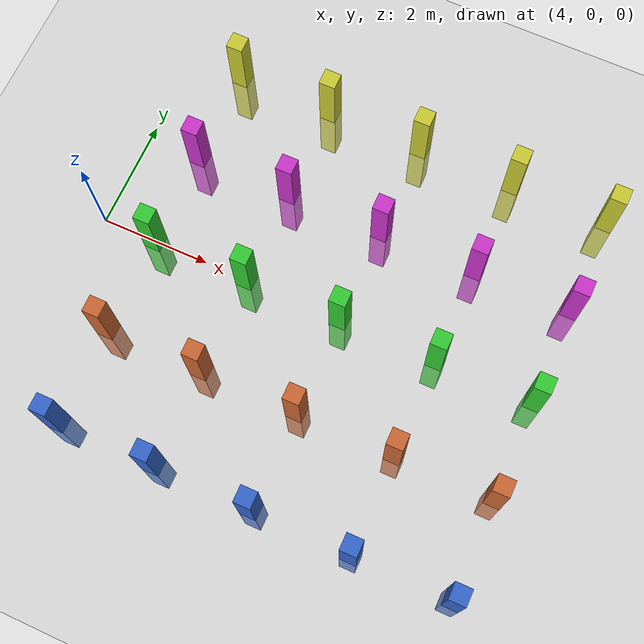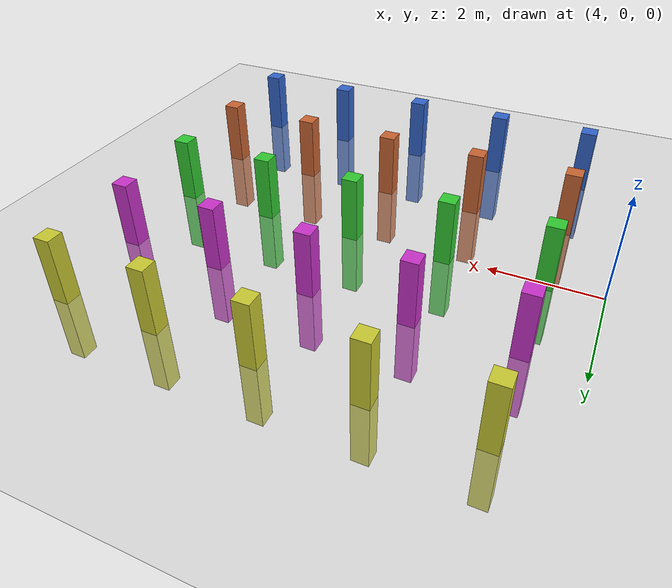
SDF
<?xml version="1.0" ?>
<sdf version="1.6">
  <world name="grid_maze">

    <physics type="ode">
      <max_step_size>0.001</max_step_size>
      <real_time_factor>1.0</real_time_factor>
      <real_time_update_rate>1000</real_time_update_rate>
      <gravity>0 0 -9.81</gravity>
      <ode>
        <solver><type>quick</type><iters>50</iters><sor>1.3</sor></solver>
        <constraints>
          <cfm>0.0</cfm><erp>0.2</erp>
          <contact_max_correcting_vel>100.0</contact_max_correcting_vel>
          <contact_surface_layer>0.001</contact_surface_layer>
        </constraints>
      </ode>
    </physics>

    <scene>
      <ambient>0.5 0.5 0.5 1.0</ambient>
      <shadows>false</shadows>
      <grid>false</grid>
    </scene>

    <include><uri>model://sun</uri></include>
    <include><uri>model://ground_plane</uri></include>

    <!-- Row y=-3.6 -->
    <model name="p00"><static>true</static><pose>5.0  -3.6 0 0 0 0</pose><link name="link">
      <collision name="c"><geometry><box><size>0.3 0.3 2.5</size></box></geometry></collision>
      <visual name="v"><geometry><box><size>0.3 0.3 2.5</size></box></geometry>
        <material><ambient>0.2 0.4 0.8 1</ambient><diffuse>0.2 0.4 0.8 1</diffuse></material></visual>
    </link></model>
    <model name="p10"><static>true</static><pose>6.8  -3.6 0 0 0 0</pose><link name="link">
      <collision name="c"><geometry><box><size>0.3 0.3 2.5</size></box></geometry></collision>
      <visual name="v"><geometry><box><size>0.3 0.3 2.5</size></box></geometry>
        <material><ambient>0.2 0.4 0.8 1</ambient><diffuse>0.2 0.4 0.8 1</diffuse></material></visual>
    </link></model>
    <model name="p20"><static>true</static><pose>8.6  -3.6 0 0 0 0</pose><link name="link">
      <collision name="c"><geometry><box><size>0.3 0.3 2.5</size></box></geometry></collision>
      <visual name="v"><geometry><box><size>0.3 0.3 2.5</size></box></geometry>
        <material><ambient>0.2 0.4 0.8 1</ambient><diffuse>0.2 0.4 0.8 1</diffuse></material></visual>
    </link></model>
    <model name="p30"><static>true</static><pose>10.4 -3.6 0 0 0 0</pose><link name="link">
      <collision name="c"><geometry><box><size>0.3 0.3 2.5</size></box></geometry></collision>
      <visual name="v"><geometry><box><size>0.3 0.3 2.5</size></box></geometry>
        <material><ambient>0.2 0.4 0.8 1</ambient><diffuse>0.2 0.4 0.8 1</diffuse></material></visual>
    </link></model>
    <model name="p40"><static>true</static><pose>12.2 -3.6 0 0 0 0</pose><link name="link">
      <collision name="c"><geometry><box><size>0.3 0.3 2.5</size></box></geometry></collision>
      <visual name="v"><geometry><box><size>0.3 0.3 2.5</size></box></geometry>
        <material><ambient>0.2 0.4 0.8 1</ambient><diffuse>0.2 0.4 0.8 1</diffuse></material></visual>
    </link></model>

    <!-- Row y=-1.8 -->
    <model name="p01"><static>true</static><pose>5.0  -1.8 0 0 0 0</pose><link name="link">
      <collision name="c"><geometry><box><size>0.3 0.3 2.5</size></box></geometry></collision>
      <visual name="v"><geometry><box><size>0.3 0.3 2.5</size></box></geometry>
        <material><ambient>0.8 0.4 0.2 1</ambient><diffuse>0.8 0.4 0.2 1</diffuse></material></visual>
    </link></model>
    <model name="p11"><static>true</static><pose>6.8  -1.8 0 0 0 0</pose><link name="link">
      <collision name="c"><geometry><box><size>0.3 0.3 2.5</size></box></geometry></collision>
      <visual name="v"><geometry><box><size>0.3 0.3 2.5</size></box></geometry>
        <material><ambient>0.8 0.4 0.2 1</ambient><diffuse>0.8 0.4 0.2 1</diffuse></material></visual>
    </link></model>
    <model name="p21"><static>true</static><pose>8.6  -1.8 0 0 0 0</pose><link name="link">
      <collision name="c"><geometry><box><size>0.3 0.3 2.5</size></box></geometry></collision>
      <visual name="v"><geometry><box><size>0.3 0.3 2.5</size></box></geometry>
        <material><ambient>0.8 0.4 0.2 1</ambient><diffuse>0.8 0.4 0.2 1</diffuse></material></visual>
    </link></model>
    <model name="p31"><static>true</static><pose>10.4 -1.8 0 0 0 0</pose><link name="link">
      <collision name="c"><geometry><box><size>0.3 0.3 2.5</size></box></geometry></collision>
      <visual name="v"><geometry><box><size>0.3 0.3 2.5</size></box></geometry>
        <material><ambient>0.8 0.4 0.2 1</ambient><diffuse>0.8 0.4 0.2 1</diffuse></material></visual>
    </link></model>
    <model name="p41"><static>true</static><pose>12.2 -1.8 0 0 0 0</pose><link name="link">
      <collision name="c"><geometry><box><size>0.3 0.3 2.5</size></box></geometry></collision>
      <visual name="v"><geometry><box><size>0.3 0.3 2.5</size></box></geometry>
        <material><ambient>0.8 0.4 0.2 1</ambient><diffuse>0.8 0.4 0.2 1</diffuse></material></visual>
    </link></model>

    <!-- Row y=0.0 (center row) -->
    <model name="p02"><static>true</static><pose>5.0   0.0 0 0 0 0</pose><link name="link">
      <collision name="c"><geometry><box><size>0.3 0.3 2.5</size></box></geometry></collision>
      <visual name="v"><geometry><box><size>0.3 0.3 2.5</size></box></geometry>
        <material><ambient>0.2 0.8 0.2 1</ambient><diffuse>0.2 0.8 0.2 1</diffuse></material></visual>
    </link></model>
    <model name="p12"><static>true</static><pose>6.8   0.0 0 0 0 0</pose><link name="link">
      <collision name="c"><geometry><box><size>0.3 0.3 2.5</size></box></geometry></collision>
      <visual name="v"><geometry><box><size>0.3 0.3 2.5</size></box></geometry>
        <material><ambient>0.2 0.8 0.2 1</ambient><diffuse>0.2 0.8 0.2 1</diffuse></material></visual>
    </link></model>
    <model name="p22"><static>true</static><pose>8.6   0.0 0 0 0 0</pose><link name="link">
      <collision name="c"><geometry><box><size>0.3 0.3 2.5</size></box></geometry></collision>
      <visual name="v"><geometry><box><size>0.3 0.3 2.5</size></box></geometry>
        <material><ambient>0.2 0.8 0.2 1</ambient><diffuse>0.2 0.8 0.2 1</diffuse></material></visual>
    </link></model>
    <model name="p32"><static>true</static><pose>10.4  0.0 0 0 0 0</pose><link name="link">
      <collision name="c"><geometry><box><size>0.3 0.3 2.5</size></box></geometry></collision>
      <visual name="v"><geometry><box><size>0.3 0.3 2.5</size></box></geometry>
        <material><ambient>0.2 0.8 0.2 1</ambient><diffuse>0.2 0.8 0.2 1</diffuse></material></visual>
    </link></model>
    <model name="p42"><static>true</static><pose>12.2  0.0 0 0 0 0</pose><link name="link">
      <collision name="c"><geometry><box><size>0.3 0.3 2.5</size></box></geometry></collision>
      <visual name="v"><geometry><box><size>0.3 0.3 2.5</size></box></geometry>
        <material><ambient>0.2 0.8 0.2 1</ambient><diffuse>0.2 0.8 0.2 1</diffuse></material></visual>
    </link></model>

    <!-- Row y=+1.8 -->
    <model name="p03"><static>true</static><pose>5.0   1.8 0 0 0 0</pose><link name="link">
      <collision name="c"><geometry><box><size>0.3 0.3 2.5</size></box></geometry></collision>
      <visual name="v"><geometry><box><size>0.3 0.3 2.5</size></box></geometry>
        <material><ambient>0.8 0.2 0.8 1</ambient><diffuse>0.8 0.2 0.8 1</diffuse></material></visual>
    </link></model>
    <model name="p13"><static>true</static><pose>6.8   1.8 0 0 0 0</pose><link name="link">
      <collision name="c"><geometry><box><size>0.3 0.3 2.5</size></box></geometry></collision>
      <visual name="v"><geometry><box><size>0.3 0.3 2.5</size></box></geometry>
        <material><ambient>0.8 0.2 0.8 1</ambient><diffuse>0.8 0.2 0.8 1</diffuse></material></visual>
    </link></model>
    <model name="p23"><static>true</static><pose>8.6   1.8 0 0 0 0</pose><link name="link">
      <collision name="c"><geometry><box><size>0.3 0.3 2.5</size></box></geometry></collision>
      <visual name="v"><geometry><box><size>0.3 0.3 2.5</size></box></geometry>
        <material><ambient>0.8 0.2 0.8 1</ambient><diffuse>0.8 0.2 0.8 1</diffuse></material></visual>
    </link></model>
    <model name="p33"><static>true</static><pose>10.4  1.8 0 0 0 0</pose><link name="link">
      <collision name="c"><geometry><box><size>0.3 0.3 2.5</size></box></geometry></collision>
      <visual name="v"><geometry><box><size>0.3 0.3 2.5</size></box></geometry>
        <material><ambient>0.8 0.2 0.8 1</ambient><diffuse>0.8 0.2 0.8 1</diffuse></material></visual>
    </link></model>
    <model name="p43"><static>true</static><pose>12.2  1.8 0 0 0 0</pose><link name="link">
      <collision name="c"><geometry><box><size>0.3 0.3 2.5</size></box></geometry></collision>
      <visual name="v"><geometry><box><size>0.3 0.3 2.5</size></box></geometry>
        <material><ambient>0.8 0.2 0.8 1</ambient><diffuse>0.8 0.2 0.8 1</diffuse></material></visual>
    </link></model>

    <!-- Row y=+3.6 -->
    <model name="p04"><static>true</static><pose>5.0   3.6 0 0 0 0</pose><link name="link">
      <collision name="c"><geometry><box><size>0.3 0.3 2.5</size></box></geometry></collision>
      <visual name="v"><geometry><box><size>0.3 0.3 2.5</size></box></geometry>
        <material><ambient>0.8 0.8 0.2 1</ambient><diffuse>0.8 0.8 0.2 1</diffuse></material></visual>
    </link></model>
    <model name="p14"><static>true</static><pose>6.8   3.6 0 0 0 0</pose><link name="link">
      <collision name="c"><geometry><box><size>0.3 0.3 2.5</size></box></geometry></collision>
      <visual name="v"><geometry><box><size>0.3 0.3 2.5</size></box></geometry>
        <material><ambient>0.8 0.8 0.2 1</ambient><diffuse>0.8 0.8 0.2 1</diffuse></material></visual>
    </link></model>
    <model name="p24"><static>true</static><pose>8.6   3.6 0 0 0 0</pose><link name="link">
      <collision name="c"><geometry><box><size>0.3 0.3 2.5</size></box></geometry></collision>
      <visual name="v"><geometry><box><size>0.3 0.3 2.5</size></box></geometry>
        <material><ambient>0.8 0.8 0.2 1</ambient><diffuse>0.8 0.8 0.2 1</diffuse></material></visual>
    </link></model>
    <model name="p34"><static>true</static><pose>10.4  3.6 0 0 0 0</pose><link name="link">
      <collision name="c"><geometry><box><size>0.3 0.3 2.5</size></box></geometry></collision>
      <visual name="v"><geometry><box><size>0.3 0.3 2.5</size></box></geometry>
        <material><ambient>0.8 0.8 0.2 1</ambient><diffuse>0.8 0.8 0.2 1</diffuse></material></visual>
    </link></model>
    <model name="p44"><static>true</static><pose>12.2  3.6 0 0 0 0</pose><link name="link">
      <collision name="c"><geometry><box><size>0.3 0.3 2.5</size></box></geometry></collision>
      <visual name="v"><geometry><box><size>0.3 0.3 2.5</size></box></geometry>
        <material><ambient>0.8 0.8 0.2 1</ambient><diffuse>0.8 0.8 0.2 1</diffuse></material></visual>
    </link></model>

  </world>
</sdf>
